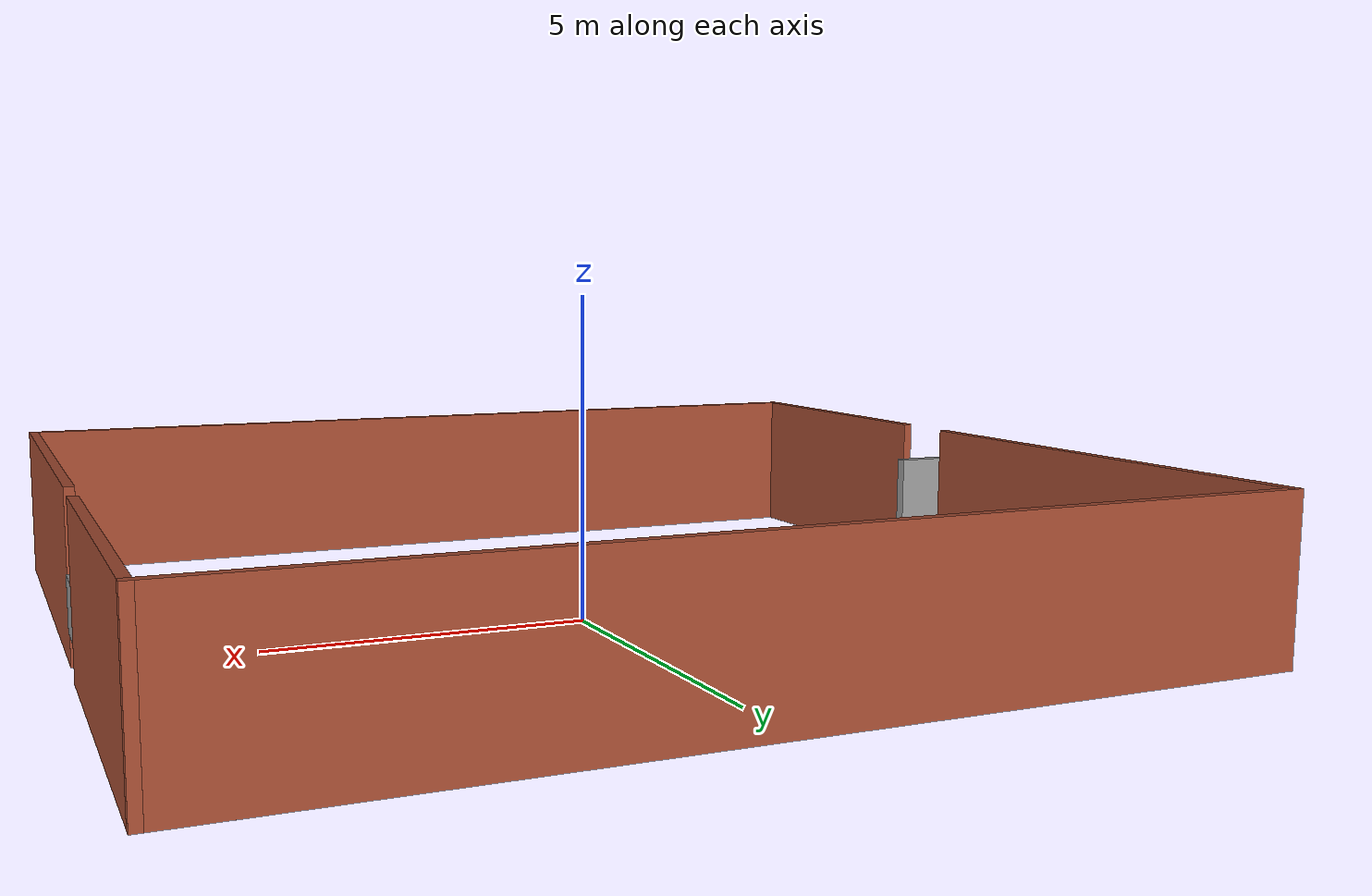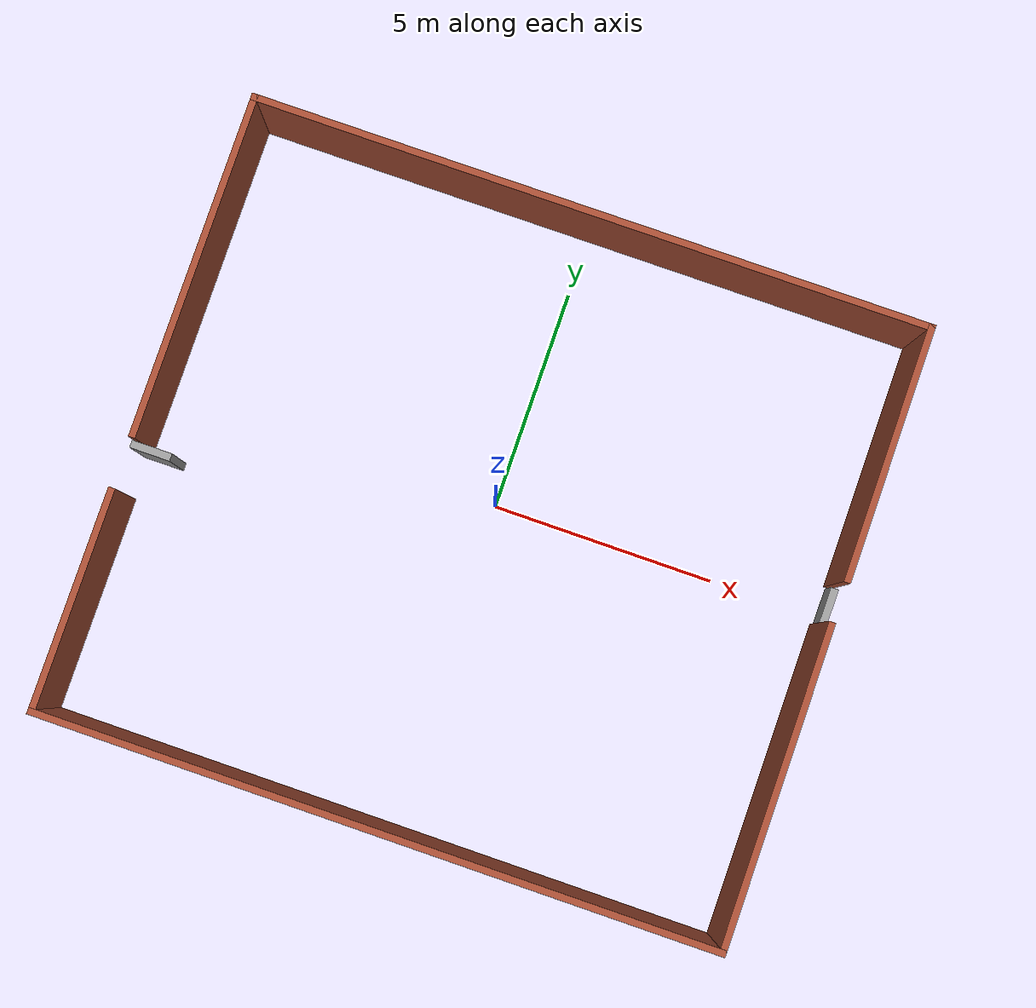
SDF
<?xml version='1.0'?>
<sdf version='1.7'>
  <model name='warehose_3'>
    <pose>-0.075425 -0.5007 0 0 -0 0</pose>
    <link name='Door_2'>
      <collision name='Door_2_Collision'>
        <geometry>
          <box>
            <size>0.9 0.17 2</size>
          </box>
        </geometry>
        <pose>0 0 1 0 -0 0</pose>
      </collision>
      <visual name='Door_2_Visual'>
        <pose>0 0 1 0 -0 0</pose>
        <geometry>
          <box>
            <size>0.9 0.17 2</size>
          </box>
        </geometry>
        <material>
          <script>
            <uri>file://media/materials/scripts/gazebo.material</uri>
            <name>Gazebo/Grey</name>
          </script>
        </material>
      </visual>
      <pose>-7.15854 -0.914569 0 0 -0 0</pose>
    </link>
    <link name='Wall_10'>
      <collision name='Wall_10_Collision'>
        <geometry>
          <box>
            <size>7.25 0.15 2.5</size>
          </box>
        </geometry>
        <pose>0 0 1.25 0 -0 0</pose>
      </collision>
      <visual name='Wall_10_Visual'>
        <pose>0 0 1.25 0 -0 0</pose>
        <geometry>
          <box>
            <size>7.25 0.15 2.5</size>
          </box>
        </geometry>
        <material>
          <script>
            <uri>file://media/materials/scripts/gazebo.material</uri>
            <name>Gazebo/Bricks</name>
          </script>
          <ambient>1 1 1 1</ambient>
        </material>
        <meta>
          <layer>0</layer>
        </meta>
      </visual>
      <pose>7.53552 -3.31387 0 0 -0 1.5708</pose>
    </link>
    <link name='Wall_12'>
      <collision name='Wall_12_Collision'>
        <geometry>
          <box>
            <size>5.75 0.15 2.5</size>
          </box>
        </geometry>
        <pose>0 0 1.25 0 -0 0</pose>
      </collision>
      <visual name='Wall_12_Visual'>
        <pose>0 0 1.25 0 -0 0</pose>
        <geometry>
          <box>
            <size>5.75 0.15 2.5</size>
          </box>
        </geometry>
        <material>
          <script>
            <uri>file://media/materials/scripts/gazebo.material</uri>
            <name>Gazebo/Bricks</name>
          </script>
          <ambient>1 1 1 1</ambient>
        </material>
        <meta>
          <layer>0</layer>
        </meta>
      </visual>
      <pose>7.56448 4.06387 0 0 -0 1.5708</pose>
    </link>
    <link name='Wall_13'>
      <collision name='Wall_13_Collision'>
        <geometry>
          <box>
            <size>15.25 0.15 2.5</size>
          </box>
        </geometry>
        <pose>0 0 1.25 0 -0 0</pose>
      </collision>
      <visual name='Wall_13_Visual'>
        <pose>0 0 1.25 0 -0 0</pose>
        <geometry>
          <box>
            <size>15.25 0.15 2.5</size>
          </box>
        </geometry>
        <material>
          <script>
            <uri>file://media/materials/scripts/gazebo.material</uri>
            <name>Gazebo/Bricks</name>
          </script>
          <ambient>1 1 1 1</ambient>
        </material>
        <meta>
          <layer>0</layer>
        </meta>
      </visual>
      <pose>0.014479 6.86387 0 0 -0 3.14159</pose>
    </link>
    <link name='Wall_16'>
      <collision name='Wall_16_Collision'>
        <geometry>
          <box>
            <size>7.75 0.15 2.5</size>
          </box>
        </geometry>
        <pose>0 0 1.25 0 -0 0</pose>
      </collision>
      <visual name='Wall_16_Visual'>
        <pose>0 0 1.25 0 -0 0</pose>
        <geometry>
          <box>
            <size>7.75 0.15 2.5</size>
          </box>
        </geometry>
        <material>
          <script>
            <uri>file://media/materials/scripts/gazebo.material</uri>
            <name>Gazebo/Bricks</name>
          </script>
          <ambient>1 1 1 1</ambient>
        </material>
        <meta>
          <layer>0</layer>
        </meta>
      </visual>
      <pose>-7.53552 3.06387 0 0 -0 -1.5708</pose>
    </link>
    <link name='Wall_8'>
      <collision name='Wall_8_Collision'>
        <geometry>
          <box>
            <size>5 0.15 2.5</size>
          </box>
        </geometry>
        <pose>0 0 1.25 0 -0 0</pose>
      </collision>
      <visual name='Wall_8_Visual'>
        <pose>0 0 1.25 0 -0 0</pose>
        <geometry>
          <box>
            <size>5 0.15 2.5</size>
          </box>
        </geometry>
        <material>
          <script>
            <uri>file://media/materials/scripts/gazebo.material</uri>
            <name>Gazebo/Bricks</name>
          </script>
          <ambient>1 1 1 1</ambient>
        </material>
        <meta>
          <layer>0</layer>
        </meta>
      </visual>
      <pose>-7.56448 -4.43887 0 0 -0 -1.5708</pose>
    </link>
    <link name='Wall_9'>
      <collision name='Wall_9_Collision'>
        <geometry>
          <box>
            <size>15.25 0.15 2.5</size>
          </box>
        </geometry>
        <pose>0 0 1.25 0 -0 0</pose>
      </collision>
      <visual name='Wall_9_Visual'>
        <pose>0 0 1.25 0 -0 0</pose>
        <geometry>
          <box>
            <size>15.25 0.15 2.5</size>
          </box>
        </geometry>
        <material>
          <script>
            <uri>file://media/materials/scripts/gazebo.material</uri>
            <name>Gazebo/Bricks</name>
          </script>
          <ambient>1 1 1 1</ambient>
        </material>
        <meta>
          <layer>0</layer>
        </meta>
      </visual>
      <pose>-0.014479 -6.86387 0 0 -0 0</pose>
    </link>
    <link name='Window_0'>
      <collision name='Window_0_Collision'>
        <geometry>
          <box>
            <size>0.8 0.17 0.8</size>
          </box>
        </geometry>
        <pose>0 0 0.4 0 -0 0</pose>
      </collision>
      <visual name='Window_0_Visual'>
        <pose>0 0 0.4 0 -0 0</pose>
        <geometry>
          <box>
            <size>0.8 0.17 0.8</size>
          </box>
        </geometry>
        <material>
          <script>
            <uri>file://media/materials/scripts/gazebo.material</uri>
            <name>Gazebo/Grey</name>
          </script>
        </material>
      </visual>
      <pose>7.54124 0.709762 0.5 0 0 -1.58062</pose>
    </link>
    <static>1</static>
  </model>
</sdf>
